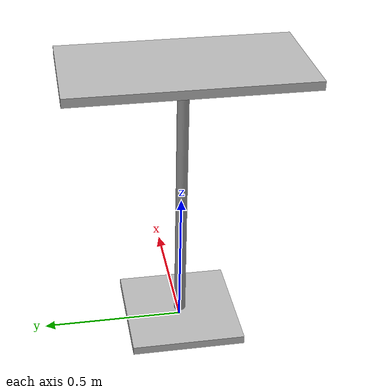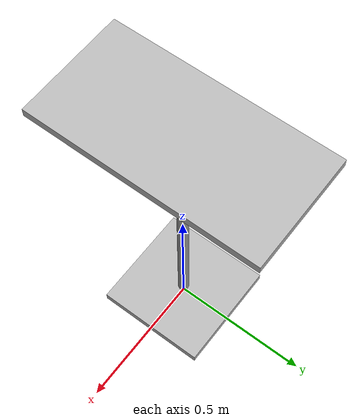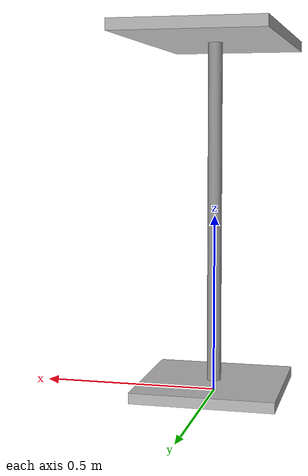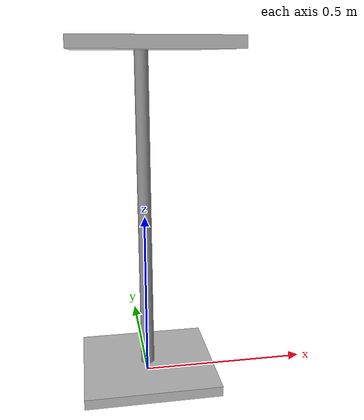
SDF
<?xml version="1.0" ?>
<sdf version="1.5">
  <model name="big_table">
    <static>true</static>
    <link name="link">
      <collision name="surface">
        <pose>0 0 1.0 0 0 0</pose>
        <geometry>
          <box>
            <size>0.4 0.8 0.03</size>
          </box>
        </geometry>
        <surface>
          <friction>
            <ode>
              <mu>0.6</mu>
              <mu2>0.6</mu2>
            </ode>
          </friction>
        </surface>
      </collision>
      <visual name="surface">
        <pose>0 0 1.0 0 0 0</pose>
        <geometry>
          <box>
            <size>0.4 0.8 0.03</size>
          </box>
        </geometry>
        <material>
          <script>
            <uri>file://scripts/robolearn.material</uri>
            <name>Robolearn/Metal1</name>
          </script>
        </material>
      </visual>
      <collision name="leg">
        <pose>0 0 0.5 0 0 0</pose>
        <geometry>
          <cylinder>
            <radius>0.02</radius>
            <length>1.0</length>
          </cylinder>
        </geometry>
      </collision>
      <visual name="leg">
        <pose>0 0 0.5 0 0 0</pose>
        <geometry>
          <cylinder>
            <radius>0.02</radius>
            <length>1.0</length>
          </cylinder>
        </geometry>
        <material>
          <script>
            <uri>file://media/materials/scripts/gazebo.material</uri>
            <name>Gazebo/Grey</name>
          </script>
        </material>
      </visual>
      <collision name="base">
        <pose>0 0 0.015 0 0 0</pose>
        <geometry>
          <box>
            <size>0.4 0.4 0.03</size>
          </box>
        </geometry>
        <surface>
          <friction>
            <ode>
              <mu>0.6</mu>
              <mu2>0.6</mu2>
            </ode>
          </friction>
        </surface>
      </collision>
      <visual name="base">
        <pose>0 0 0.015 0 0 0</pose>
        <geometry>
          <box>
            <size>0.4 0.4 0.03</size>
          </box>
        </geometry>
        <material>
          <script>
            <uri>file://scripts/robolearn.material</uri>
            <name>Robolearn/Metal1</name>
          </script>
        </material>
      </visual>

    </link>
  </model>
</sdf>
